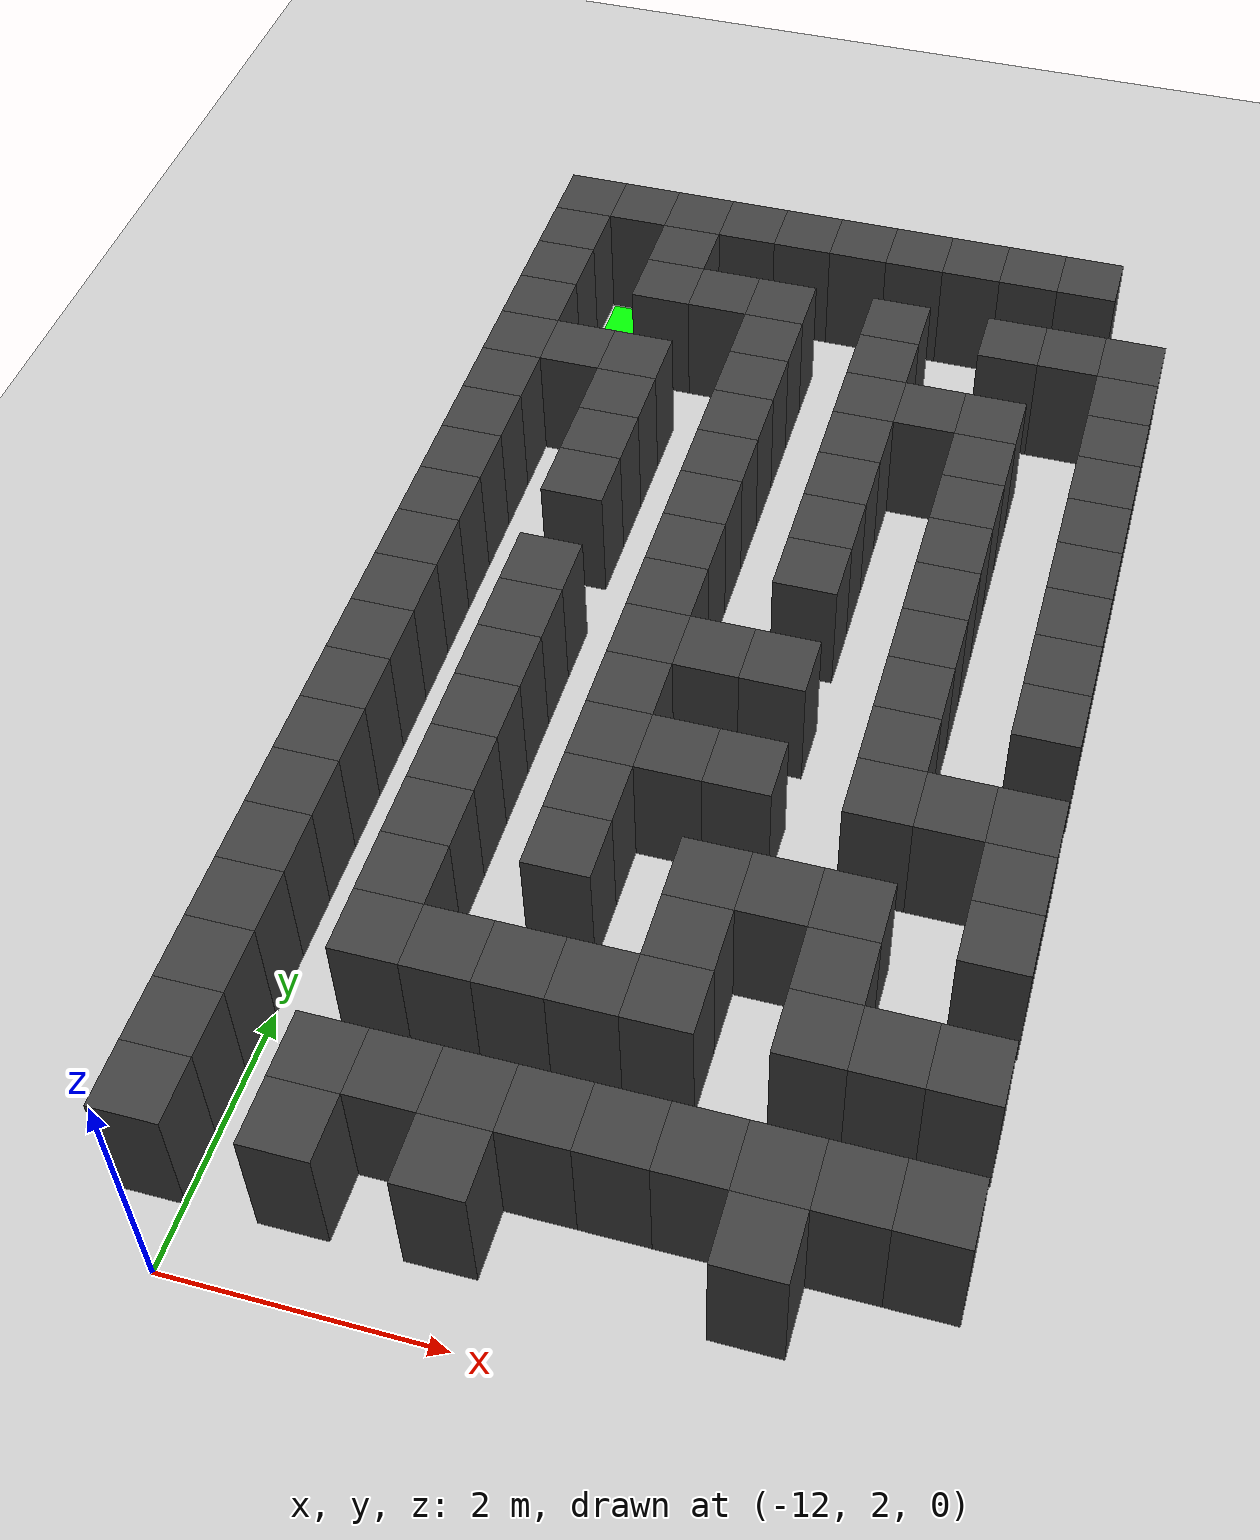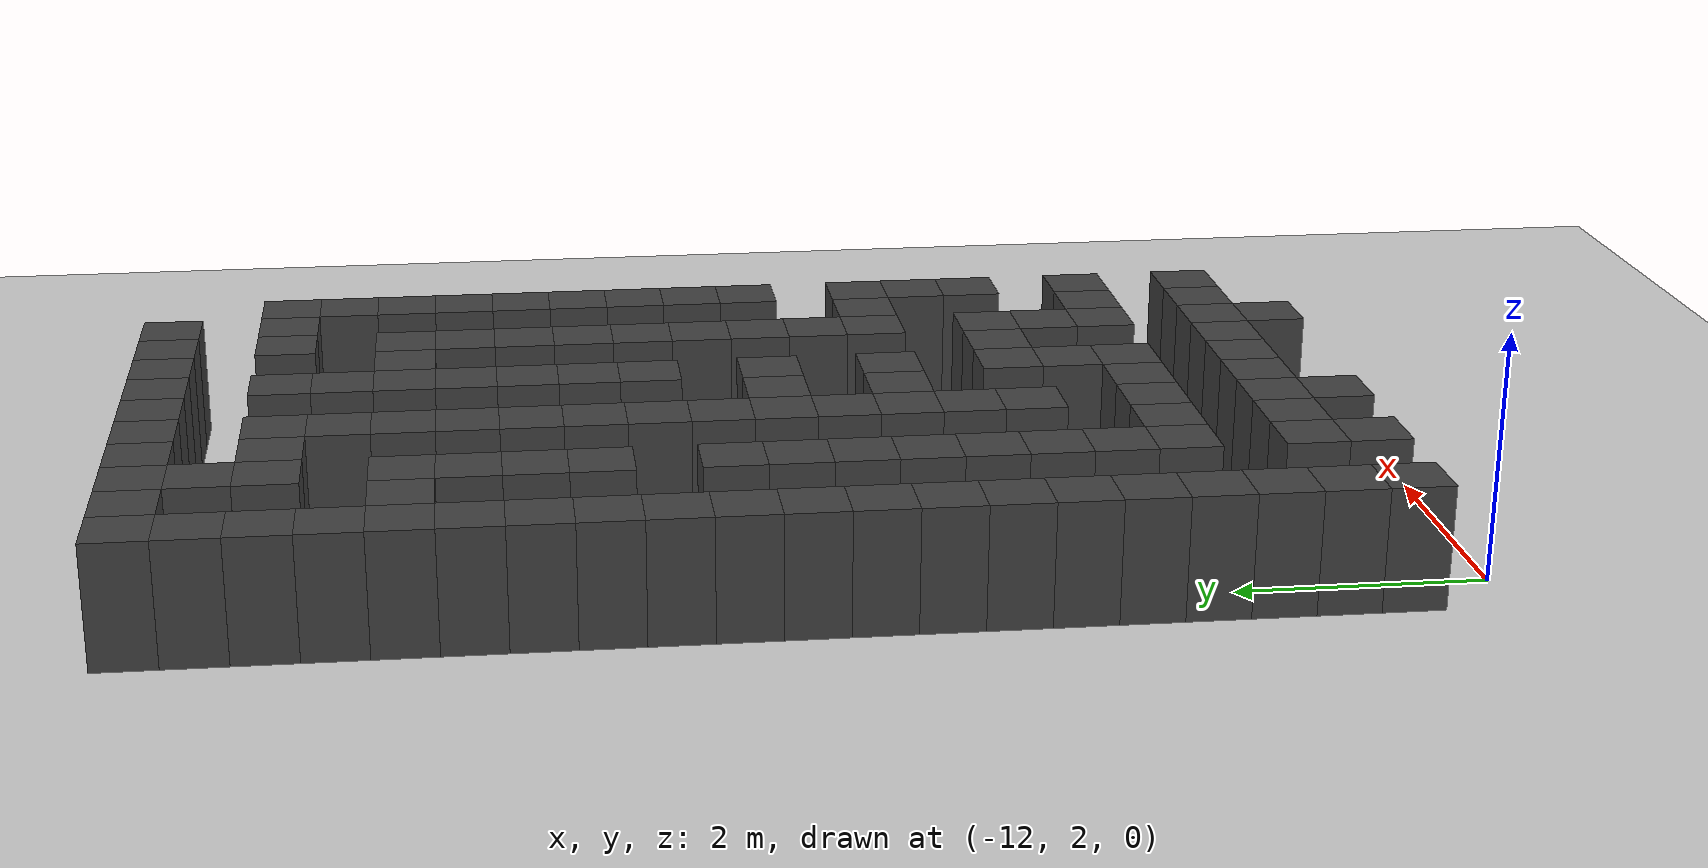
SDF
<sdf version="1.7">
 <world name="map_18553">
  <model name="ground_plane">
   <static>true</static>
   <link name="link">
    <collision name="collision">
     <geometry><plane><normal>0 0 1</normal><size>200 200</size></plane></geometry>
    </collision>
    <visual name="visual">
     <geometry><plane><normal>0 0 1</normal><size>200 200</size></plane></geometry>
     <material><ambient>0.8 0.8 0.8 1</ambient><diffuse>0.8 0.8 0.8 1</diffuse></material>
    </visual>
   </link>
  </model>
  <model name="maze_environment">
   <static>true</static>
   <link name="wall_0">
    <pose>-12.250 12.250 0.500 0 0 0</pose>
    <collision name="col"><geometry><box><size>0.5 0.5 1.0</size></box></geometry></collision>
    <visual name="vis">
     <geometry><box><size>0.5 0.5 1.0</size></box></geometry>
     <material><ambient>0.15 0.15 0.15 1</ambient><diffuse>0.25 0.25 0.25 1</diffuse></material>
    </visual>
   </link>
   <link name="wall_1">
    <pose>-11.750 12.250 0.500 0 0 0</pose>
    <collision name="col"><geometry><box><size>0.5 0.5 1.0</size></box></geometry></collision>
    <visual name="vis">
     <geometry><box><size>0.5 0.5 1.0</size></box></geometry>
     <material><ambient>0.15 0.15 0.15 1</ambient><diffuse>0.25 0.25 0.25 1</diffuse></material>
    </visual>
   </link>
   <link name="wall_2">
    <pose>-11.250 12.250 0.500 0 0 0</pose>
    <collision name="col"><geometry><box><size>0.5 0.5 1.0</size></box></geometry></collision>
    <visual name="vis">
     <geometry><box><size>0.5 0.5 1.0</size></box></geometry>
     <material><ambient>0.15 0.15 0.15 1</ambient><diffuse>0.25 0.25 0.25 1</diffuse></material>
    </visual>
   </link>
   <link name="wall_3">
    <pose>-10.750 12.250 0.500 0 0 0</pose>
    <collision name="col"><geometry><box><size>0.5 0.5 1.0</size></box></geometry></collision>
    <visual name="vis">
     <geometry><box><size>0.5 0.5 1.0</size></box></geometry>
     <material><ambient>0.15 0.15 0.15 1</ambient><diffuse>0.25 0.25 0.25 1</diffuse></material>
    </visual>
   </link>
   <link name="wall_4">
    <pose>-10.250 12.250 0.500 0 0 0</pose>
    <collision name="col"><geometry><box><size>0.5 0.5 1.0</size></box></geometry></collision>
    <visual name="vis">
     <geometry><box><size>0.5 0.5 1.0</size></box></geometry>
     <material><ambient>0.15 0.15 0.15 1</ambient><diffuse>0.25 0.25 0.25 1</diffuse></material>
    </visual>
   </link>
   <link name="wall_5">
    <pose>-9.750 12.250 0.500 0 0 0</pose>
    <collision name="col"><geometry><box><size>0.5 0.5 1.0</size></box></geometry></collision>
    <visual name="vis">
     <geometry><box><size>0.5 0.5 1.0</size></box></geometry>
     <material><ambient>0.15 0.15 0.15 1</ambient><diffuse>0.25 0.25 0.25 1</diffuse></material>
    </visual>
   </link>
   <link name="wall_6">
    <pose>-9.250 12.250 0.500 0 0 0</pose>
    <collision name="col"><geometry><box><size>0.5 0.5 1.0</size></box></geometry></collision>
    <visual name="vis">
     <geometry><box><size>0.5 0.5 1.0</size></box></geometry>
     <material><ambient>0.15 0.15 0.15 1</ambient><diffuse>0.25 0.25 0.25 1</diffuse></material>
    </visual>
   </link>
   <link name="wall_7">
    <pose>-8.750 12.250 0.500 0 0 0</pose>
    <collision name="col"><geometry><box><size>0.5 0.5 1.0</size></box></geometry></collision>
    <visual name="vis">
     <geometry><box><size>0.5 0.5 1.0</size></box></geometry>
     <material><ambient>0.15 0.15 0.15 1</ambient><diffuse>0.25 0.25 0.25 1</diffuse></material>
    </visual>
   </link>
   <link name="wall_8">
    <pose>-8.250 12.250 0.500 0 0 0</pose>
    <collision name="col"><geometry><box><size>0.5 0.5 1.0</size></box></geometry></collision>
    <visual name="vis">
     <geometry><box><size>0.5 0.5 1.0</size></box></geometry>
     <material><ambient>0.15 0.15 0.15 1</ambient><diffuse>0.25 0.25 0.25 1</diffuse></material>
    </visual>
   </link>
   <link name="wall_9">
    <pose>-7.750 12.250 0.500 0 0 0</pose>
    <collision name="col"><geometry><box><size>0.5 0.5 1.0</size></box></geometry></collision>
    <visual name="vis">
     <geometry><box><size>0.5 0.5 1.0</size></box></geometry>
     <material><ambient>0.15 0.15 0.15 1</ambient><diffuse>0.25 0.25 0.25 1</diffuse></material>
    </visual>
   </link>
   <link name="wall_50">
    <pose>-12.250 11.750 0.500 0 0 0</pose>
    <collision name="col"><geometry><box><size>0.5 0.5 1.0</size></box></geometry></collision>
    <visual name="vis">
     <geometry><box><size>0.5 0.5 1.0</size></box></geometry>
     <material><ambient>0.15 0.15 0.15 1</ambient><diffuse>0.25 0.25 0.25 1</diffuse></material>
    </visual>
   </link>
   <link name="wall_51">
    <pose>-11.250 11.750 0.500 0 0 0</pose>
    <collision name="col"><geometry><box><size>0.5 0.5 1.0</size></box></geometry></collision>
    <visual name="vis">
     <geometry><box><size>0.5 0.5 1.0</size></box></geometry>
     <material><ambient>0.15 0.15 0.15 1</ambient><diffuse>0.25 0.25 0.25 1</diffuse></material>
    </visual>
   </link>
   <link name="wall_58">
    <pose>-12.250 11.250 0.500 0 0 0</pose>
    <collision name="col"><geometry><box><size>0.5 0.5 1.0</size></box></geometry></collision>
    <visual name="vis">
     <geometry><box><size>0.5 0.5 1.0</size></box></geometry>
     <material><ambient>0.15 0.15 0.15 1</ambient><diffuse>0.25 0.25 0.25 1</diffuse></material>
    </visual>
   </link>
   <link name="wall_59">
    <pose>-11.250 11.250 0.500 0 0 0</pose>
    <collision name="col"><geometry><box><size>0.5 0.5 1.0</size></box></geometry></collision>
    <visual name="vis">
     <geometry><box><size>0.5 0.5 1.0</size></box></geometry>
     <material><ambient>0.15 0.15 0.15 1</ambient><diffuse>0.25 0.25 0.25 1</diffuse></material>
    </visual>
   </link>
   <link name="wall_60">
    <pose>-10.750 11.250 0.500 0 0 0</pose>
    <collision name="col"><geometry><box><size>0.5 0.5 1.0</size></box></geometry></collision>
    <visual name="vis">
     <geometry><box><size>0.5 0.5 1.0</size></box></geometry>
     <material><ambient>0.15 0.15 0.15 1</ambient><diffuse>0.25 0.25 0.25 1</diffuse></material>
    </visual>
   </link>
   <link name="wall_61">
    <pose>-10.250 11.250 0.500 0 0 0</pose>
    <collision name="col"><geometry><box><size>0.5 0.5 1.0</size></box></geometry></collision>
    <visual name="vis">
     <geometry><box><size>0.5 0.5 1.0</size></box></geometry>
     <material><ambient>0.15 0.15 0.15 1</ambient><diffuse>0.25 0.25 0.25 1</diffuse></material>
    </visual>
   </link>
   <link name="wall_62">
    <pose>-9.250 11.250 0.500 0 0 0</pose>
    <collision name="col"><geometry><box><size>0.5 0.5 1.0</size></box></geometry></collision>
    <visual name="vis">
     <geometry><box><size>0.5 0.5 1.0</size></box></geometry>
     <material><ambient>0.15 0.15 0.15 1</ambient><diffuse>0.25 0.25 0.25 1</diffuse></material>
    </visual>
   </link>
   <link name="wall_63">
    <pose>-8.250 11.250 0.500 0 0 0</pose>
    <collision name="col"><geometry><box><size>0.5 0.5 1.0</size></box></geometry></collision>
    <visual name="vis">
     <geometry><box><size>0.5 0.5 1.0</size></box></geometry>
     <material><ambient>0.15 0.15 0.15 1</ambient><diffuse>0.25 0.25 0.25 1</diffuse></material>
    </visual>
   </link>
   <link name="wall_64">
    <pose>-7.750 11.250 0.500 0 0 0</pose>
    <collision name="col"><geometry><box><size>0.5 0.5 1.0</size></box></geometry></collision>
    <visual name="vis">
     <geometry><box><size>0.5 0.5 1.0</size></box></geometry>
     <material><ambient>0.15 0.15 0.15 1</ambient><diffuse>0.25 0.25 0.25 1</diffuse></material>
    </visual>
   </link>
   <link name="wall_65">
    <pose>-7.250 11.250 0.500 0 0 0</pose>
    <collision name="col"><geometry><box><size>0.5 0.5 1.0</size></box></geometry></collision>
    <visual name="vis">
     <geometry><box><size>0.5 0.5 1.0</size></box></geometry>
     <material><ambient>0.15 0.15 0.15 1</ambient><diffuse>0.25 0.25 0.25 1</diffuse></material>
    </visual>
   </link>
   <link name="wall_93">
    <pose>-12.250 10.750 0.500 0 0 0</pose>
    <collision name="col"><geometry><box><size>0.5 0.5 1.0</size></box></geometry></collision>
    <visual name="vis">
     <geometry><box><size>0.5 0.5 1.0</size></box></geometry>
     <material><ambient>0.15 0.15 0.15 1</ambient><diffuse>0.25 0.25 0.25 1</diffuse></material>
    </visual>
   </link>
   <link name="wall_94">
    <pose>-10.250 10.750 0.500 0 0 0</pose>
    <collision name="col"><geometry><box><size>0.5 0.5 1.0</size></box></geometry></collision>
    <visual name="vis">
     <geometry><box><size>0.5 0.5 1.0</size></box></geometry>
     <material><ambient>0.15 0.15 0.15 1</ambient><diffuse>0.25 0.25 0.25 1</diffuse></material>
    </visual>
   </link>
   <link name="wall_95">
    <pose>-9.250 10.750 0.500 0 0 0</pose>
    <collision name="col"><geometry><box><size>0.5 0.5 1.0</size></box></geometry></collision>
    <visual name="vis">
     <geometry><box><size>0.5 0.5 1.0</size></box></geometry>
     <material><ambient>0.15 0.15 0.15 1</ambient><diffuse>0.25 0.25 0.25 1</diffuse></material>
    </visual>
   </link>
   <link name="wall_96">
    <pose>-7.250 10.750 0.500 0 0 0</pose>
    <collision name="col"><geometry><box><size>0.5 0.5 1.0</size></box></geometry></collision>
    <visual name="vis">
     <geometry><box><size>0.5 0.5 1.0</size></box></geometry>
     <material><ambient>0.15 0.15 0.15 1</ambient><diffuse>0.25 0.25 0.25 1</diffuse></material>
    </visual>
   </link>
   <link name="wall_109">
    <pose>-12.250 10.250 0.500 0 0 0</pose>
    <collision name="col"><geometry><box><size>0.5 0.5 1.0</size></box></geometry></collision>
    <visual name="vis">
     <geometry><box><size>0.5 0.5 1.0</size></box></geometry>
     <material><ambient>0.15 0.15 0.15 1</ambient><diffuse>0.25 0.25 0.25 1</diffuse></material>
    </visual>
   </link>
   <link name="wall_110">
    <pose>-11.750 10.250 0.500 0 0 0</pose>
    <collision name="col"><geometry><box><size>0.5 0.5 1.0</size></box></geometry></collision>
    <visual name="vis">
     <geometry><box><size>0.5 0.5 1.0</size></box></geometry>
     <material><ambient>0.15 0.15 0.15 1</ambient><diffuse>0.25 0.25 0.25 1</diffuse></material>
    </visual>
   </link>
   <link name="wall_111">
    <pose>-11.250 10.250 0.500 0 0 0</pose>
    <collision name="col"><geometry><box><size>0.5 0.5 1.0</size></box></geometry></collision>
    <visual name="vis">
     <geometry><box><size>0.5 0.5 1.0</size></box></geometry>
     <material><ambient>0.15 0.15 0.15 1</ambient><diffuse>0.25 0.25 0.25 1</diffuse></material>
    </visual>
   </link>
   <link name="wall_112">
    <pose>-10.250 10.250 0.500 0 0 0</pose>
    <collision name="col"><geometry><box><size>0.5 0.5 1.0</size></box></geometry></collision>
    <visual name="vis">
     <geometry><box><size>0.5 0.5 1.0</size></box></geometry>
     <material><ambient>0.15 0.15 0.15 1</ambient><diffuse>0.25 0.25 0.25 1</diffuse></material>
    </visual>
   </link>
   <link name="wall_113">
    <pose>-9.250 10.250 0.500 0 0 0</pose>
    <collision name="col"><geometry><box><size>0.5 0.5 1.0</size></box></geometry></collision>
    <visual name="vis">
     <geometry><box><size>0.5 0.5 1.0</size></box></geometry>
     <material><ambient>0.15 0.15 0.15 1</ambient><diffuse>0.25 0.25 0.25 1</diffuse></material>
    </visual>
   </link>
   <link name="wall_114">
    <pose>-8.750 10.250 0.500 0 0 0</pose>
    <collision name="col"><geometry><box><size>0.5 0.5 1.0</size></box></geometry></collision>
    <visual name="vis">
     <geometry><box><size>0.5 0.5 1.0</size></box></geometry>
     <material><ambient>0.15 0.15 0.15 1</ambient><diffuse>0.25 0.25 0.25 1</diffuse></material>
    </visual>
   </link>
   <link name="wall_115">
    <pose>-8.250 10.250 0.500 0 0 0</pose>
    <collision name="col"><geometry><box><size>0.5 0.5 1.0</size></box></geometry></collision>
    <visual name="vis">
     <geometry><box><size>0.5 0.5 1.0</size></box></geometry>
     <material><ambient>0.15 0.15 0.15 1</ambient><diffuse>0.25 0.25 0.25 1</diffuse></material>
    </visual>
   </link>
   <link name="wall_116">
    <pose>-7.250 10.250 0.500 0 0 0</pose>
    <collision name="col"><geometry><box><size>0.5 0.5 1.0</size></box></geometry></collision>
    <visual name="vis">
     <geometry><box><size>0.5 0.5 1.0</size></box></geometry>
     <material><ambient>0.15 0.15 0.15 1</ambient><diffuse>0.25 0.25 0.25 1</diffuse></material>
    </visual>
   </link>
   <link name="wall_142">
    <pose>-12.250 9.750 0.500 0 0 0</pose>
    <collision name="col"><geometry><box><size>0.5 0.5 1.0</size></box></geometry></collision>
    <visual name="vis">
     <geometry><box><size>0.5 0.5 1.0</size></box></geometry>
     <material><ambient>0.15 0.15 0.15 1</ambient><diffuse>0.25 0.25 0.25 1</diffuse></material>
    </visual>
   </link>
   <link name="wall_143">
    <pose>-11.250 9.750 0.500 0 0 0</pose>
    <collision name="col"><geometry><box><size>0.5 0.5 1.0</size></box></geometry></collision>
    <visual name="vis">
     <geometry><box><size>0.5 0.5 1.0</size></box></geometry>
     <material><ambient>0.15 0.15 0.15 1</ambient><diffuse>0.25 0.25 0.25 1</diffuse></material>
    </visual>
   </link>
   <link name="wall_144">
    <pose>-10.250 9.750 0.500 0 0 0</pose>
    <collision name="col"><geometry><box><size>0.5 0.5 1.0</size></box></geometry></collision>
    <visual name="vis">
     <geometry><box><size>0.5 0.5 1.0</size></box></geometry>
     <material><ambient>0.15 0.15 0.15 1</ambient><diffuse>0.25 0.25 0.25 1</diffuse></material>
    </visual>
   </link>
   <link name="wall_145">
    <pose>-9.250 9.750 0.500 0 0 0</pose>
    <collision name="col"><geometry><box><size>0.5 0.5 1.0</size></box></geometry></collision>
    <visual name="vis">
     <geometry><box><size>0.5 0.5 1.0</size></box></geometry>
     <material><ambient>0.15 0.15 0.15 1</ambient><diffuse>0.25 0.25 0.25 1</diffuse></material>
    </visual>
   </link>
   <link name="wall_146">
    <pose>-8.250 9.750 0.500 0 0 0</pose>
    <collision name="col"><geometry><box><size>0.5 0.5 1.0</size></box></geometry></collision>
    <visual name="vis">
     <geometry><box><size>0.5 0.5 1.0</size></box></geometry>
     <material><ambient>0.15 0.15 0.15 1</ambient><diffuse>0.25 0.25 0.25 1</diffuse></material>
    </visual>
   </link>
   <link name="wall_147">
    <pose>-7.250 9.750 0.500 0 0 0</pose>
    <collision name="col"><geometry><box><size>0.5 0.5 1.0</size></box></geometry></collision>
    <visual name="vis">
     <geometry><box><size>0.5 0.5 1.0</size></box></geometry>
     <material><ambient>0.15 0.15 0.15 1</ambient><diffuse>0.25 0.25 0.25 1</diffuse></material>
    </visual>
   </link>
   <link name="wall_162">
    <pose>-12.250 9.250 0.500 0 0 0</pose>
    <collision name="col"><geometry><box><size>0.5 0.5 1.0</size></box></geometry></collision>
    <visual name="vis">
     <geometry><box><size>0.5 0.5 1.0</size></box></geometry>
     <material><ambient>0.15 0.15 0.15 1</ambient><diffuse>0.25 0.25 0.25 1</diffuse></material>
    </visual>
   </link>
   <link name="wall_163">
    <pose>-11.250 9.250 0.500 0 0 0</pose>
    <collision name="col"><geometry><box><size>0.5 0.5 1.0</size></box></geometry></collision>
    <visual name="vis">
     <geometry><box><size>0.5 0.5 1.0</size></box></geometry>
     <material><ambient>0.15 0.15 0.15 1</ambient><diffuse>0.25 0.25 0.25 1</diffuse></material>
    </visual>
   </link>
   <link name="wall_164">
    <pose>-10.250 9.250 0.500 0 0 0</pose>
    <collision name="col"><geometry><box><size>0.5 0.5 1.0</size></box></geometry></collision>
    <visual name="vis">
     <geometry><box><size>0.5 0.5 1.0</size></box></geometry>
     <material><ambient>0.15 0.15 0.15 1</ambient><diffuse>0.25 0.25 0.25 1</diffuse></material>
    </visual>
   </link>
   <link name="wall_165">
    <pose>-9.250 9.250 0.500 0 0 0</pose>
    <collision name="col"><geometry><box><size>0.5 0.5 1.0</size></box></geometry></collision>
    <visual name="vis">
     <geometry><box><size>0.5 0.5 1.0</size></box></geometry>
     <material><ambient>0.15 0.15 0.15 1</ambient><diffuse>0.25 0.25 0.25 1</diffuse></material>
    </visual>
   </link>
   <link name="wall_166">
    <pose>-8.250 9.250 0.500 0 0 0</pose>
    <collision name="col"><geometry><box><size>0.5 0.5 1.0</size></box></geometry></collision>
    <visual name="vis">
     <geometry><box><size>0.5 0.5 1.0</size></box></geometry>
     <material><ambient>0.15 0.15 0.15 1</ambient><diffuse>0.25 0.25 0.25 1</diffuse></material>
    </visual>
   </link>
   <link name="wall_167">
    <pose>-7.250 9.250 0.500 0 0 0</pose>
    <collision name="col"><geometry><box><size>0.5 0.5 1.0</size></box></geometry></collision>
    <visual name="vis">
     <geometry><box><size>0.5 0.5 1.0</size></box></geometry>
     <material><ambient>0.15 0.15 0.15 1</ambient><diffuse>0.25 0.25 0.25 1</diffuse></material>
    </visual>
   </link>
   <link name="wall_195">
    <pose>-12.250 8.750 0.500 0 0 0</pose>
    <collision name="col"><geometry><box><size>0.5 0.5 1.0</size></box></geometry></collision>
    <visual name="vis">
     <geometry><box><size>0.5 0.5 1.0</size></box></geometry>
     <material><ambient>0.15 0.15 0.15 1</ambient><diffuse>0.25 0.25 0.25 1</diffuse></material>
    </visual>
   </link>
   <link name="wall_196">
    <pose>-11.250 8.750 0.500 0 0 0</pose>
    <collision name="col"><geometry><box><size>0.5 0.5 1.0</size></box></geometry></collision>
    <visual name="vis">
     <geometry><box><size>0.5 0.5 1.0</size></box></geometry>
     <material><ambient>0.15 0.15 0.15 1</ambient><diffuse>0.25 0.25 0.25 1</diffuse></material>
    </visual>
   </link>
   <link name="wall_197">
    <pose>-10.250 8.750 0.500 0 0 0</pose>
    <collision name="col"><geometry><box><size>0.5 0.5 1.0</size></box></geometry></collision>
    <visual name="vis">
     <geometry><box><size>0.5 0.5 1.0</size></box></geometry>
     <material><ambient>0.15 0.15 0.15 1</ambient><diffuse>0.25 0.25 0.25 1</diffuse></material>
    </visual>
   </link>
   <link name="wall_198">
    <pose>-9.250 8.750 0.500 0 0 0</pose>
    <collision name="col"><geometry><box><size>0.5 0.5 1.0</size></box></geometry></collision>
    <visual name="vis">
     <geometry><box><size>0.5 0.5 1.0</size></box></geometry>
     <material><ambient>0.15 0.15 0.15 1</ambient><diffuse>0.25 0.25 0.25 1</diffuse></material>
    </visual>
   </link>
   <link name="wall_199">
    <pose>-8.250 8.750 0.500 0 0 0</pose>
    <collision name="col"><geometry><box><size>0.5 0.5 1.0</size></box></geometry></collision>
    <visual name="vis">
     <geometry><box><size>0.5 0.5 1.0</size></box></geometry>
     <material><ambient>0.15 0.15 0.15 1</ambient><diffuse>0.25 0.25 0.25 1</diffuse></material>
    </visual>
   </link>
   <link name="wall_200">
    <pose>-7.250 8.750 0.500 0 0 0</pose>
    <collision name="col"><geometry><box><size>0.5 0.5 1.0</size></box></geometry></collision>
    <visual name="vis">
     <geometry><box><size>0.5 0.5 1.0</size></box></geometry>
     <material><ambient>0.15 0.15 0.15 1</ambient><diffuse>0.25 0.25 0.25 1</diffuse></material>
    </visual>
   </link>
   <link name="wall_212">
    <pose>-12.250 8.250 0.500 0 0 0</pose>
    <collision name="col"><geometry><box><size>0.5 0.5 1.0</size></box></geometry></collision>
    <visual name="vis">
     <geometry><box><size>0.5 0.5 1.0</size></box></geometry>
     <material><ambient>0.15 0.15 0.15 1</ambient><diffuse>0.25 0.25 0.25 1</diffuse></material>
    </visual>
   </link>
   <link name="wall_213">
    <pose>-10.250 8.250 0.500 0 0 0</pose>
    <collision name="col"><geometry><box><size>0.5 0.5 1.0</size></box></geometry></collision>
    <visual name="vis">
     <geometry><box><size>0.5 0.5 1.0</size></box></geometry>
     <material><ambient>0.15 0.15 0.15 1</ambient><diffuse>0.25 0.25 0.25 1</diffuse></material>
    </visual>
   </link>
   <link name="wall_214">
    <pose>-9.250 8.250 0.500 0 0 0</pose>
    <collision name="col"><geometry><box><size>0.5 0.5 1.0</size></box></geometry></collision>
    <visual name="vis">
     <geometry><box><size>0.5 0.5 1.0</size></box></geometry>
     <material><ambient>0.15 0.15 0.15 1</ambient><diffuse>0.25 0.25 0.25 1</diffuse></material>
    </visual>
   </link>
   <link name="wall_215">
    <pose>-8.250 8.250 0.500 0 0 0</pose>
    <collision name="col"><geometry><box><size>0.5 0.5 1.0</size></box></geometry></collision>
    <visual name="vis">
     <geometry><box><size>0.5 0.5 1.0</size></box></geometry>
     <material><ambient>0.15 0.15 0.15 1</ambient><diffuse>0.25 0.25 0.25 1</diffuse></material>
    </visual>
   </link>
   <link name="wall_216">
    <pose>-7.250 8.250 0.500 0 0 0</pose>
    <collision name="col"><geometry><box><size>0.5 0.5 1.0</size></box></geometry></collision>
    <visual name="vis">
     <geometry><box><size>0.5 0.5 1.0</size></box></geometry>
     <material><ambient>0.15 0.15 0.15 1</ambient><diffuse>0.25 0.25 0.25 1</diffuse></material>
    </visual>
   </link>
   <link name="wall_243">
    <pose>-12.250 7.750 0.500 0 0 0</pose>
    <collision name="col"><geometry><box><size>0.5 0.5 1.0</size></box></geometry></collision>
    <visual name="vis">
     <geometry><box><size>0.5 0.5 1.0</size></box></geometry>
     <material><ambient>0.15 0.15 0.15 1</ambient><diffuse>0.25 0.25 0.25 1</diffuse></material>
    </visual>
   </link>
   <link name="wall_244">
    <pose>-11.250 7.750 0.500 0 0 0</pose>
    <collision name="col"><geometry><box><size>0.5 0.5 1.0</size></box></geometry></collision>
    <visual name="vis">
     <geometry><box><size>0.5 0.5 1.0</size></box></geometry>
     <material><ambient>0.15 0.15 0.15 1</ambient><diffuse>0.25 0.25 0.25 1</diffuse></material>
    </visual>
   </link>
   <link name="wall_245">
    <pose>-10.250 7.750 0.500 0 0 0</pose>
    <collision name="col"><geometry><box><size>0.5 0.5 1.0</size></box></geometry></collision>
    <visual name="vis">
     <geometry><box><size>0.5 0.5 1.0</size></box></geometry>
     <material><ambient>0.15 0.15 0.15 1</ambient><diffuse>0.25 0.25 0.25 1</diffuse></material>
    </visual>
   </link>
   <link name="wall_246">
    <pose>-8.250 7.750 0.500 0 0 0</pose>
    <collision name="col"><geometry><box><size>0.5 0.5 1.0</size></box></geometry></collision>
    <visual name="vis">
     <geometry><box><size>0.5 0.5 1.0</size></box></geometry>
     <material><ambient>0.15 0.15 0.15 1</ambient><diffuse>0.25 0.25 0.25 1</diffuse></material>
    </visual>
   </link>
   <link name="wall_247">
    <pose>-7.250 7.750 0.500 0 0 0</pose>
    <collision name="col"><geometry><box><size>0.5 0.5 1.0</size></box></geometry></collision>
    <visual name="vis">
     <geometry><box><size>0.5 0.5 1.0</size></box></geometry>
     <material><ambient>0.15 0.15 0.15 1</ambient><diffuse>0.25 0.25 0.25 1</diffuse></material>
    </visual>
   </link>
   <link name="wall_257">
    <pose>-12.250 7.250 0.500 0 0 0</pose>
    <collision name="col"><geometry><box><size>0.5 0.5 1.0</size></box></geometry></collision>
    <visual name="vis">
     <geometry><box><size>0.5 0.5 1.0</size></box></geometry>
     <material><ambient>0.15 0.15 0.15 1</ambient><diffuse>0.25 0.25 0.25 1</diffuse></material>
    </visual>
   </link>
   <link name="wall_258">
    <pose>-11.250 7.250 0.500 0 0 0</pose>
    <collision name="col"><geometry><box><size>0.5 0.5 1.0</size></box></geometry></collision>
    <visual name="vis">
     <geometry><box><size>0.5 0.5 1.0</size></box></geometry>
     <material><ambient>0.15 0.15 0.15 1</ambient><diffuse>0.25 0.25 0.25 1</diffuse></material>
    </visual>
   </link>
   <link name="wall_259">
    <pose>-10.250 7.250 0.500 0 0 0</pose>
    <collision name="col"><geometry><box><size>0.5 0.5 1.0</size></box></geometry></collision>
    <visual name="vis">
     <geometry><box><size>0.5 0.5 1.0</size></box></geometry>
     <material><ambient>0.15 0.15 0.15 1</ambient><diffuse>0.25 0.25 0.25 1</diffuse></material>
    </visual>
   </link>
   <link name="wall_260">
    <pose>-9.750 7.250 0.500 0 0 0</pose>
    <collision name="col"><geometry><box><size>0.5 0.5 1.0</size></box></geometry></collision>
    <visual name="vis">
     <geometry><box><size>0.5 0.5 1.0</size></box></geometry>
     <material><ambient>0.15 0.15 0.15 1</ambient><diffuse>0.25 0.25 0.25 1</diffuse></material>
    </visual>
   </link>
   <link name="wall_261">
    <pose>-9.250 7.250 0.500 0 0 0</pose>
    <collision name="col"><geometry><box><size>0.5 0.5 1.0</size></box></geometry></collision>
    <visual name="vis">
     <geometry><box><size>0.5 0.5 1.0</size></box></geometry>
     <material><ambient>0.15 0.15 0.15 1</ambient><diffuse>0.25 0.25 0.25 1</diffuse></material>
    </visual>
   </link>
   <link name="wall_262">
    <pose>-8.250 7.250 0.500 0 0 0</pose>
    <collision name="col"><geometry><box><size>0.5 0.5 1.0</size></box></geometry></collision>
    <visual name="vis">
     <geometry><box><size>0.5 0.5 1.0</size></box></geometry>
     <material><ambient>0.15 0.15 0.15 1</ambient><diffuse>0.25 0.25 0.25 1</diffuse></material>
    </visual>
   </link>
   <link name="wall_263">
    <pose>-7.250 7.250 0.500 0 0 0</pose>
    <collision name="col"><geometry><box><size>0.5 0.5 1.0</size></box></geometry></collision>
    <visual name="vis">
     <geometry><box><size>0.5 0.5 1.0</size></box></geometry>
     <material><ambient>0.15 0.15 0.15 1</ambient><diffuse>0.25 0.25 0.25 1</diffuse></material>
    </visual>
   </link>
   <link name="wall_291">
    <pose>-12.250 6.750 0.500 0 0 0</pose>
    <collision name="col"><geometry><box><size>0.5 0.5 1.0</size></box></geometry></collision>
    <visual name="vis">
     <geometry><box><size>0.5 0.5 1.0</size></box></geometry>
     <material><ambient>0.15 0.15 0.15 1</ambient><diffuse>0.25 0.25 0.25 1</diffuse></material>
    </visual>
   </link>
   <link name="wall_292">
    <pose>-11.250 6.750 0.500 0 0 0</pose>
    <collision name="col"><geometry><box><size>0.5 0.5 1.0</size></box></geometry></collision>
    <visual name="vis">
     <geometry><box><size>0.5 0.5 1.0</size></box></geometry>
     <material><ambient>0.15 0.15 0.15 1</ambient><diffuse>0.25 0.25 0.25 1</diffuse></material>
    </visual>
   </link>
   <link name="wall_293">
    <pose>-10.250 6.750 0.500 0 0 0</pose>
    <collision name="col"><geometry><box><size>0.5 0.5 1.0</size></box></geometry></collision>
    <visual name="vis">
     <geometry><box><size>0.5 0.5 1.0</size></box></geometry>
     <material><ambient>0.15 0.15 0.15 1</ambient><diffuse>0.25 0.25 0.25 1</diffuse></material>
    </visual>
   </link>
   <link name="wall_294">
    <pose>-8.250 6.750 0.500 0 0 0</pose>
    <collision name="col"><geometry><box><size>0.5 0.5 1.0</size></box></geometry></collision>
    <visual name="vis">
     <geometry><box><size>0.5 0.5 1.0</size></box></geometry>
     <material><ambient>0.15 0.15 0.15 1</ambient><diffuse>0.25 0.25 0.25 1</diffuse></material>
    </visual>
   </link>
   <link name="wall_305">
    <pose>-12.250 6.250 0.500 0 0 0</pose>
    <collision name="col"><geometry><box><size>0.5 0.5 1.0</size></box></geometry></collision>
    <visual name="vis">
     <geometry><box><size>0.5 0.5 1.0</size></box></geometry>
     <material><ambient>0.15 0.15 0.15 1</ambient><diffuse>0.25 0.25 0.25 1</diffuse></material>
    </visual>
   </link>
   <link name="wall_306">
    <pose>-11.250 6.250 0.500 0 0 0</pose>
    <collision name="col"><geometry><box><size>0.5 0.5 1.0</size></box></geometry></collision>
    <visual name="vis">
     <geometry><box><size>0.5 0.5 1.0</size></box></geometry>
     <material><ambient>0.15 0.15 0.15 1</ambient><diffuse>0.25 0.25 0.25 1</diffuse></material>
    </visual>
   </link>
   <link name="wall_307">
    <pose>-10.250 6.250 0.500 0 0 0</pose>
    <collision name="col"><geometry><box><size>0.5 0.5 1.0</size></box></geometry></collision>
    <visual name="vis">
     <geometry><box><size>0.5 0.5 1.0</size></box></geometry>
     <material><ambient>0.15 0.15 0.15 1</ambient><diffuse>0.25 0.25 0.25 1</diffuse></material>
    </visual>
   </link>
   <link name="wall_308">
    <pose>-9.750 6.250 0.500 0 0 0</pose>
    <collision name="col"><geometry><box><size>0.5 0.5 1.0</size></box></geometry></collision>
    <visual name="vis">
     <geometry><box><size>0.5 0.5 1.0</size></box></geometry>
     <material><ambient>0.15 0.15 0.15 1</ambient><diffuse>0.25 0.25 0.25 1</diffuse></material>
    </visual>
   </link>
   <link name="wall_309">
    <pose>-9.250 6.250 0.500 0 0 0</pose>
    <collision name="col"><geometry><box><size>0.5 0.5 1.0</size></box></geometry></collision>
    <visual name="vis">
     <geometry><box><size>0.5 0.5 1.0</size></box></geometry>
     <material><ambient>0.15 0.15 0.15 1</ambient><diffuse>0.25 0.25 0.25 1</diffuse></material>
    </visual>
   </link>
   <link name="wall_310">
    <pose>-8.250 6.250 0.500 0 0 0</pose>
    <collision name="col"><geometry><box><size>0.5 0.5 1.0</size></box></geometry></collision>
    <visual name="vis">
     <geometry><box><size>0.5 0.5 1.0</size></box></geometry>
     <material><ambient>0.15 0.15 0.15 1</ambient><diffuse>0.25 0.25 0.25 1</diffuse></material>
    </visual>
   </link>
   <link name="wall_311">
    <pose>-7.750 6.250 0.500 0 0 0</pose>
    <collision name="col"><geometry><box><size>0.5 0.5 1.0</size></box></geometry></collision>
    <visual name="vis">
     <geometry><box><size>0.5 0.5 1.0</size></box></geometry>
     <material><ambient>0.15 0.15 0.15 1</ambient><diffuse>0.25 0.25 0.25 1</diffuse></material>
    </visual>
   </link>
   <link name="wall_312">
    <pose>-7.250 6.250 0.500 0 0 0</pose>
    <collision name="col"><geometry><box><size>0.5 0.5 1.0</size></box></geometry></collision>
    <visual name="vis">
     <geometry><box><size>0.5 0.5 1.0</size></box></geometry>
     <material><ambient>0.15 0.15 0.15 1</ambient><diffuse>0.25 0.25 0.25 1</diffuse></material>
    </visual>
   </link>
   <link name="wall_340">
    <pose>-12.250 5.750 0.500 0 0 0</pose>
    <collision name="col"><geometry><box><size>0.5 0.5 1.0</size></box></geometry></collision>
    <visual name="vis">
     <geometry><box><size>0.5 0.5 1.0</size></box></geometry>
     <material><ambient>0.15 0.15 0.15 1</ambient><diffuse>0.25 0.25 0.25 1</diffuse></material>
    </visual>
   </link>
   <link name="wall_341">
    <pose>-11.250 5.750 0.500 0 0 0</pose>
    <collision name="col"><geometry><box><size>0.5 0.5 1.0</size></box></geometry></collision>
    <visual name="vis">
     <geometry><box><size>0.5 0.5 1.0</size></box></geometry>
     <material><ambient>0.15 0.15 0.15 1</ambient><diffuse>0.25 0.25 0.25 1</diffuse></material>
    </visual>
   </link>
   <link name="wall_342">
    <pose>-10.250 5.750 0.500 0 0 0</pose>
    <collision name="col"><geometry><box><size>0.5 0.5 1.0</size></box></geometry></collision>
    <visual name="vis">
     <geometry><box><size>0.5 0.5 1.0</size></box></geometry>
     <material><ambient>0.15 0.15 0.15 1</ambient><diffuse>0.25 0.25 0.25 1</diffuse></material>
    </visual>
   </link>
   <link name="wall_343">
    <pose>-7.250 5.750 0.500 0 0 0</pose>
    <collision name="col"><geometry><box><size>0.5 0.5 1.0</size></box></geometry></collision>
    <visual name="vis">
     <geometry><box><size>0.5 0.5 1.0</size></box></geometry>
     <material><ambient>0.15 0.15 0.15 1</ambient><diffuse>0.25 0.25 0.25 1</diffuse></material>
    </visual>
   </link>
   <link name="wall_354">
    <pose>-12.250 5.250 0.500 0 0 0</pose>
    <collision name="col"><geometry><box><size>0.5 0.5 1.0</size></box></geometry></collision>
    <visual name="vis">
     <geometry><box><size>0.5 0.5 1.0</size></box></geometry>
     <material><ambient>0.15 0.15 0.15 1</ambient><diffuse>0.25 0.25 0.25 1</diffuse></material>
    </visual>
   </link>
   <link name="wall_355">
    <pose>-11.250 5.250 0.500 0 0 0</pose>
    <collision name="col"><geometry><box><size>0.5 0.5 1.0</size></box></geometry></collision>
    <visual name="vis">
     <geometry><box><size>0.5 0.5 1.0</size></box></geometry>
     <material><ambient>0.15 0.15 0.15 1</ambient><diffuse>0.25 0.25 0.25 1</diffuse></material>
    </visual>
   </link>
   <link name="wall_356">
    <pose>-10.250 5.250 0.500 0 0 0</pose>
    <collision name="col"><geometry><box><size>0.5 0.5 1.0</size></box></geometry></collision>
    <visual name="vis">
     <geometry><box><size>0.5 0.5 1.0</size></box></geometry>
     <material><ambient>0.15 0.15 0.15 1</ambient><diffuse>0.25 0.25 0.25 1</diffuse></material>
    </visual>
   </link>
   <link name="wall_357">
    <pose>-9.250 5.250 0.500 0 0 0</pose>
    <collision name="col"><geometry><box><size>0.5 0.5 1.0</size></box></geometry></collision>
    <visual name="vis">
     <geometry><box><size>0.5 0.5 1.0</size></box></geometry>
     <material><ambient>0.15 0.15 0.15 1</ambient><diffuse>0.25 0.25 0.25 1</diffuse></material>
    </visual>
   </link>
   <link name="wall_358">
    <pose>-8.750 5.250 0.500 0 0 0</pose>
    <collision name="col"><geometry><box><size>0.5 0.5 1.0</size></box></geometry></collision>
    <visual name="vis">
     <geometry><box><size>0.5 0.5 1.0</size></box></geometry>
     <material><ambient>0.15 0.15 0.15 1</ambient><diffuse>0.25 0.25 0.25 1</diffuse></material>
    </visual>
   </link>
   <link name="wall_359">
    <pose>-8.250 5.250 0.500 0 0 0</pose>
    <collision name="col"><geometry><box><size>0.5 0.5 1.0</size></box></geometry></collision>
    <visual name="vis">
     <geometry><box><size>0.5 0.5 1.0</size></box></geometry>
     <material><ambient>0.15 0.15 0.15 1</ambient><diffuse>0.25 0.25 0.25 1</diffuse></material>
    </visual>
   </link>
   <link name="wall_360">
    <pose>-7.250 5.250 0.500 0 0 0</pose>
    <collision name="col"><geometry><box><size>0.5 0.5 1.0</size></box></geometry></collision>
    <visual name="vis">
     <geometry><box><size>0.5 0.5 1.0</size></box></geometry>
     <material><ambient>0.15 0.15 0.15 1</ambient><diffuse>0.25 0.25 0.25 1</diffuse></material>
    </visual>
   </link>
   <link name="wall_389">
    <pose>-12.250 4.750 0.500 0 0 0</pose>
    <collision name="col"><geometry><box><size>0.5 0.5 1.0</size></box></geometry></collision>
    <visual name="vis">
     <geometry><box><size>0.5 0.5 1.0</size></box></geometry>
     <material><ambient>0.15 0.15 0.15 1</ambient><diffuse>0.25 0.25 0.25 1</diffuse></material>
    </visual>
   </link>
   <link name="wall_390">
    <pose>-11.250 4.750 0.500 0 0 0</pose>
    <collision name="col"><geometry><box><size>0.5 0.5 1.0</size></box></geometry></collision>
    <visual name="vis">
     <geometry><box><size>0.5 0.5 1.0</size></box></geometry>
     <material><ambient>0.15 0.15 0.15 1</ambient><diffuse>0.25 0.25 0.25 1</diffuse></material>
    </visual>
   </link>
   <link name="wall_391">
    <pose>-9.250 4.750 0.500 0 0 0</pose>
    <collision name="col"><geometry><box><size>0.5 0.5 1.0</size></box></geometry></collision>
    <visual name="vis">
     <geometry><box><size>0.5 0.5 1.0</size></box></geometry>
     <material><ambient>0.15 0.15 0.15 1</ambient><diffuse>0.25 0.25 0.25 1</diffuse></material>
    </visual>
   </link>
   <link name="wall_392">
    <pose>-8.250 4.750 0.500 0 0 0</pose>
    <collision name="col"><geometry><box><size>0.5 0.5 1.0</size></box></geometry></collision>
    <visual name="vis">
     <geometry><box><size>0.5 0.5 1.0</size></box></geometry>
     <material><ambient>0.15 0.15 0.15 1</ambient><diffuse>0.25 0.25 0.25 1</diffuse></material>
    </visual>
   </link>
   <link name="wall_405">
    <pose>-12.250 4.250 0.500 0 0 0</pose>
    <collision name="col"><geometry><box><size>0.5 0.5 1.0</size></box></geometry></collision>
    <visual name="vis">
     <geometry><box><size>0.5 0.5 1.0</size></box></geometry>
     <material><ambient>0.15 0.15 0.15 1</ambient><diffuse>0.25 0.25 0.25 1</diffuse></material>
    </visual>
   </link>
   <link name="wall_406">
    <pose>-11.250 4.250 0.500 0 0 0</pose>
    <collision name="col"><geometry><box><size>0.5 0.5 1.0</size></box></geometry></collision>
    <visual name="vis">
     <geometry><box><size>0.5 0.5 1.0</size></box></geometry>
     <material><ambient>0.15 0.15 0.15 1</ambient><diffuse>0.25 0.25 0.25 1</diffuse></material>
    </visual>
   </link>
   <link name="wall_407">
    <pose>-10.750 4.250 0.500 0 0 0</pose>
    <collision name="col"><geometry><box><size>0.5 0.5 1.0</size></box></geometry></collision>
    <visual name="vis">
     <geometry><box><size>0.5 0.5 1.0</size></box></geometry>
     <material><ambient>0.15 0.15 0.15 1</ambient><diffuse>0.25 0.25 0.25 1</diffuse></material>
    </visual>
   </link>
   <link name="wall_408">
    <pose>-10.250 4.250 0.500 0 0 0</pose>
    <collision name="col"><geometry><box><size>0.5 0.5 1.0</size></box></geometry></collision>
    <visual name="vis">
     <geometry><box><size>0.5 0.5 1.0</size></box></geometry>
     <material><ambient>0.15 0.15 0.15 1</ambient><diffuse>0.25 0.25 0.25 1</diffuse></material>
    </visual>
   </link>
   <link name="wall_409">
    <pose>-9.750 4.250 0.500 0 0 0</pose>
    <collision name="col"><geometry><box><size>0.5 0.5 1.0</size></box></geometry></collision>
    <visual name="vis">
     <geometry><box><size>0.5 0.5 1.0</size></box></geometry>
     <material><ambient>0.15 0.15 0.15 1</ambient><diffuse>0.25 0.25 0.25 1</diffuse></material>
    </visual>
   </link>
   <link name="wall_410">
    <pose>-9.250 4.250 0.500 0 0 0</pose>
    <collision name="col"><geometry><box><size>0.5 0.5 1.0</size></box></geometry></collision>
    <visual name="vis">
     <geometry><box><size>0.5 0.5 1.0</size></box></geometry>
     <material><ambient>0.15 0.15 0.15 1</ambient><diffuse>0.25 0.25 0.25 1</diffuse></material>
    </visual>
   </link>
   <link name="wall_411">
    <pose>-8.250 4.250 0.500 0 0 0</pose>
    <collision name="col"><geometry><box><size>0.5 0.5 1.0</size></box></geometry></collision>
    <visual name="vis">
     <geometry><box><size>0.5 0.5 1.0</size></box></geometry>
     <material><ambient>0.15 0.15 0.15 1</ambient><diffuse>0.25 0.25 0.25 1</diffuse></material>
    </visual>
   </link>
   <link name="wall_412">
    <pose>-7.750 4.250 0.500 0 0 0</pose>
    <collision name="col"><geometry><box><size>0.5 0.5 1.0</size></box></geometry></collision>
    <visual name="vis">
     <geometry><box><size>0.5 0.5 1.0</size></box></geometry>
     <material><ambient>0.15 0.15 0.15 1</ambient><diffuse>0.25 0.25 0.25 1</diffuse></material>
    </visual>
   </link>
   <link name="wall_413">
    <pose>-7.250 4.250 0.500 0 0 0</pose>
    <collision name="col"><geometry><box><size>0.5 0.5 1.0</size></box></geometry></collision>
    <visual name="vis">
     <geometry><box><size>0.5 0.5 1.0</size></box></geometry>
     <material><ambient>0.15 0.15 0.15 1</ambient><diffuse>0.25 0.25 0.25 1</diffuse></material>
    </visual>
   </link>
   <link name="wall_442">
    <pose>-12.250 3.750 0.500 0 0 0</pose>
    <collision name="col"><geometry><box><size>0.5 0.5 1.0</size></box></geometry></collision>
    <visual name="vis">
     <geometry><box><size>0.5 0.5 1.0</size></box></geometry>
     <material><ambient>0.15 0.15 0.15 1</ambient><diffuse>0.25 0.25 0.25 1</diffuse></material>
    </visual>
   </link>
   <link name="wall_456">
    <pose>-12.250 3.250 0.500 0 0 0</pose>
    <collision name="col"><geometry><box><size>0.5 0.5 1.0</size></box></geometry></collision>
    <visual name="vis">
     <geometry><box><size>0.5 0.5 1.0</size></box></geometry>
     <material><ambient>0.15 0.15 0.15 1</ambient><diffuse>0.25 0.25 0.25 1</diffuse></material>
    </visual>
   </link>
   <link name="wall_457">
    <pose>-11.250 3.250 0.500 0 0 0</pose>
    <collision name="col"><geometry><box><size>0.5 0.5 1.0</size></box></geometry></collision>
    <visual name="vis">
     <geometry><box><size>0.5 0.5 1.0</size></box></geometry>
     <material><ambient>0.15 0.15 0.15 1</ambient><diffuse>0.25 0.25 0.25 1</diffuse></material>
    </visual>
   </link>
   <link name="wall_458">
    <pose>-10.750 3.250 0.500 0 0 0</pose>
    <collision name="col"><geometry><box><size>0.5 0.5 1.0</size></box></geometry></collision>
    <visual name="vis">
     <geometry><box><size>0.5 0.5 1.0</size></box></geometry>
     <material><ambient>0.15 0.15 0.15 1</ambient><diffuse>0.25 0.25 0.25 1</diffuse></material>
    </visual>
   </link>
   <link name="wall_459">
    <pose>-10.250 3.250 0.500 0 0 0</pose>
    <collision name="col"><geometry><box><size>0.5 0.5 1.0</size></box></geometry></collision>
    <visual name="vis">
     <geometry><box><size>0.5 0.5 1.0</size></box></geometry>
     <material><ambient>0.15 0.15 0.15 1</ambient><diffuse>0.25 0.25 0.25 1</diffuse></material>
    </visual>
   </link>
   <link name="wall_460">
    <pose>-9.750 3.250 0.500 0 0 0</pose>
    <collision name="col"><geometry><box><size>0.5 0.5 1.0</size></box></geometry></collision>
    <visual name="vis">
     <geometry><box><size>0.5 0.5 1.0</size></box></geometry>
     <material><ambient>0.15 0.15 0.15 1</ambient><diffuse>0.25 0.25 0.25 1</diffuse></material>
    </visual>
   </link>
   <link name="wall_461">
    <pose>-9.250 3.250 0.500 0 0 0</pose>
    <collision name="col"><geometry><box><size>0.5 0.5 1.0</size></box></geometry></collision>
    <visual name="vis">
     <geometry><box><size>0.5 0.5 1.0</size></box></geometry>
     <material><ambient>0.15 0.15 0.15 1</ambient><diffuse>0.25 0.25 0.25 1</diffuse></material>
    </visual>
   </link>
   <link name="wall_462">
    <pose>-8.750 3.250 0.500 0 0 0</pose>
    <collision name="col"><geometry><box><size>0.5 0.5 1.0</size></box></geometry></collision>
    <visual name="vis">
     <geometry><box><size>0.5 0.5 1.0</size></box></geometry>
     <material><ambient>0.15 0.15 0.15 1</ambient><diffuse>0.25 0.25 0.25 1</diffuse></material>
    </visual>
   </link>
   <link name="wall_463">
    <pose>-8.250 3.250 0.500 0 0 0</pose>
    <collision name="col"><geometry><box><size>0.5 0.5 1.0</size></box></geometry></collision>
    <visual name="vis">
     <geometry><box><size>0.5 0.5 1.0</size></box></geometry>
     <material><ambient>0.15 0.15 0.15 1</ambient><diffuse>0.25 0.25 0.25 1</diffuse></material>
    </visual>
   </link>
   <link name="wall_464">
    <pose>-7.750 3.250 0.500 0 0 0</pose>
    <collision name="col"><geometry><box><size>0.5 0.5 1.0</size></box></geometry></collision>
    <visual name="vis">
     <geometry><box><size>0.5 0.5 1.0</size></box></geometry>
     <material><ambient>0.15 0.15 0.15 1</ambient><diffuse>0.25 0.25 0.25 1</diffuse></material>
    </visual>
   </link>
   <link name="wall_465">
    <pose>-7.250 3.250 0.500 0 0 0</pose>
    <collision name="col"><geometry><box><size>0.5 0.5 1.0</size></box></geometry></collision>
    <visual name="vis">
     <geometry><box><size>0.5 0.5 1.0</size></box></geometry>
     <material><ambient>0.15 0.15 0.15 1</ambient><diffuse>0.25 0.25 0.25 1</diffuse></material>
    </visual>
   </link>
   <link name="wall_494">
    <pose>-12.250 2.750 0.500 0 0 0</pose>
    <collision name="col"><geometry><box><size>0.5 0.5 1.0</size></box></geometry></collision>
    <visual name="vis">
     <geometry><box><size>0.5 0.5 1.0</size></box></geometry>
     <material><ambient>0.15 0.15 0.15 1</ambient><diffuse>0.25 0.25 0.25 1</diffuse></material>
    </visual>
   </link>
   <link name="wall_495">
    <pose>-11.250 2.750 0.500 0 0 0</pose>
    <collision name="col"><geometry><box><size>0.5 0.5 1.0</size></box></geometry></collision>
    <visual name="vis">
     <geometry><box><size>0.5 0.5 1.0</size></box></geometry>
     <material><ambient>0.15 0.15 0.15 1</ambient><diffuse>0.25 0.25 0.25 1</diffuse></material>
    </visual>
   </link>
   <link name="wall_496">
    <pose>-10.250 2.750 0.500 0 0 0</pose>
    <collision name="col"><geometry><box><size>0.5 0.5 1.0</size></box></geometry></collision>
    <visual name="vis">
     <geometry><box><size>0.5 0.5 1.0</size></box></geometry>
     <material><ambient>0.15 0.15 0.15 1</ambient><diffuse>0.25 0.25 0.25 1</diffuse></material>
    </visual>
   </link>
   <link name="wall_497">
    <pose>-8.250 2.750 0.500 0 0 0</pose>
    <collision name="col"><geometry><box><size>0.5 0.5 1.0</size></box></geometry></collision>
    <visual name="vis">
     <geometry><box><size>0.5 0.5 1.0</size></box></geometry>
     <material><ambient>0.15 0.15 0.15 1</ambient><diffuse>0.25 0.25 0.25 1</diffuse></material>
    </visual>
   </link>
   <link name="start_zone">
    <pose>-11.750 11.750 0.005 0 0 0</pose>
    <visual name="vis">
     <geometry><box><size>0.45 0.45 0.01</size></box></geometry>
     <material>
      <ambient>0.0 1.0 0.0 1</ambient>
      <diffuse>0.0 1.0 0.0 1</diffuse>
      <emissive>0.00 0.60 0.00 1</emissive>
     </material>
    </visual>
   </link>
  </model>
 </world>
</sdf>
